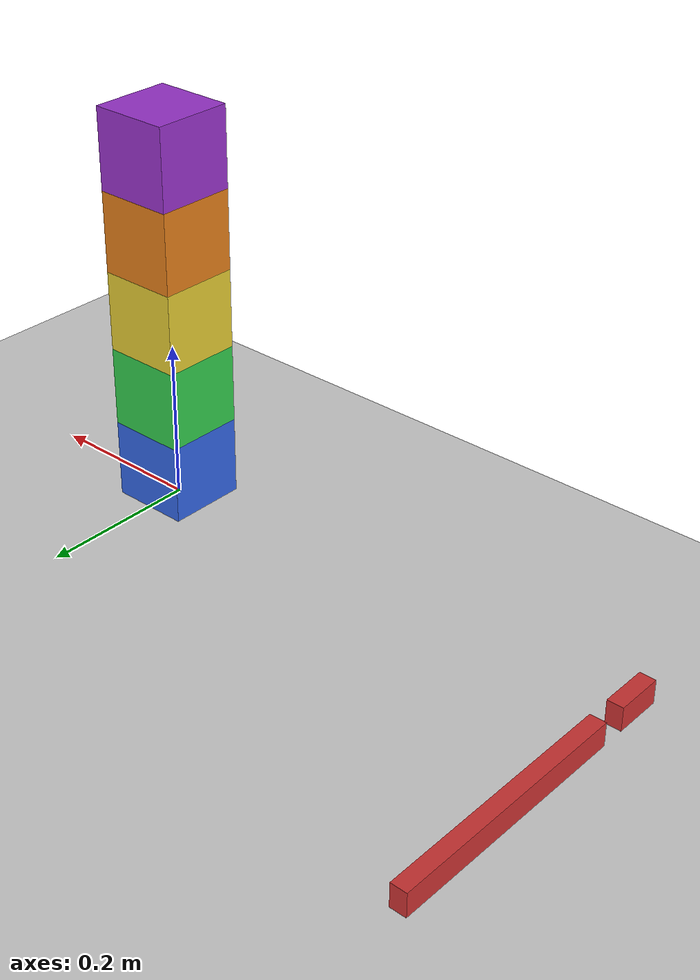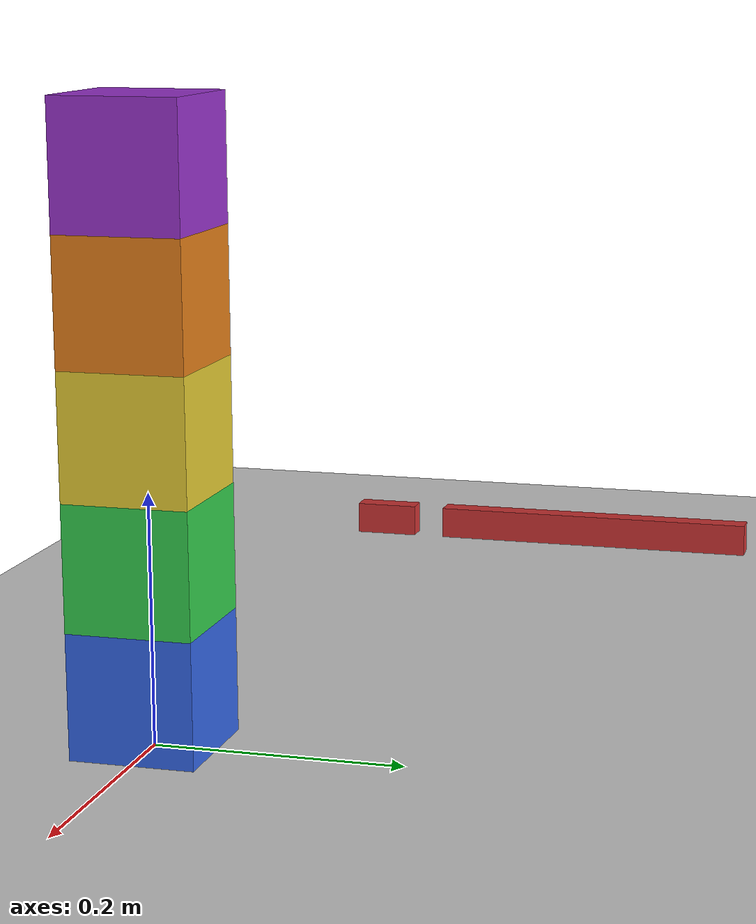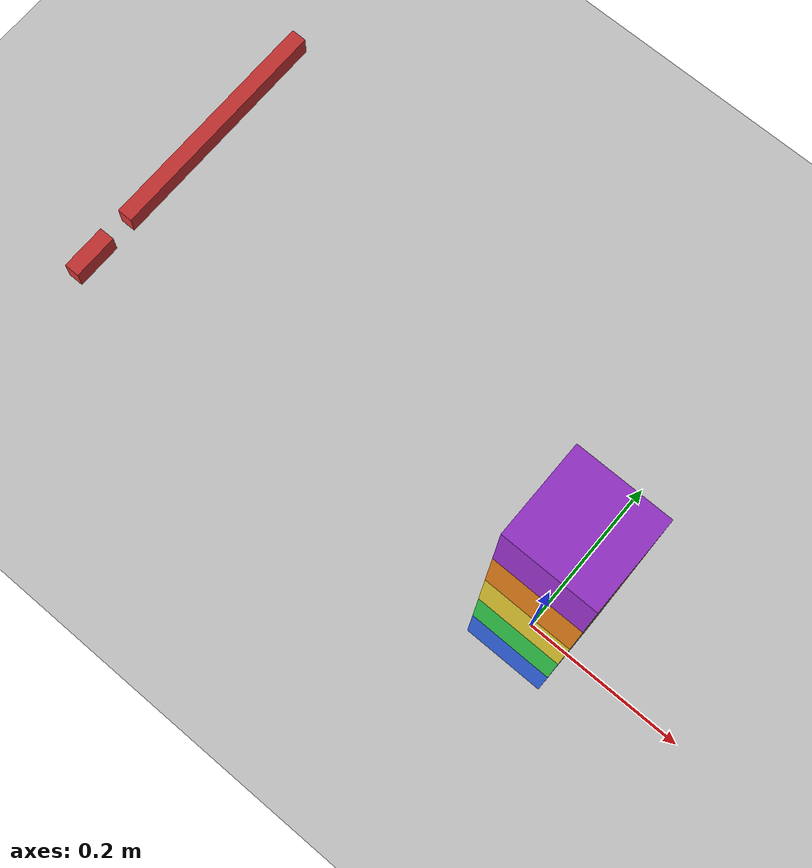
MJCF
<mujoco model="toppling_stack">
  <option timestep="0.002" gravity="0 0 -9.81"/>
  <visual>
    <global offwidth="1280" offheight="720"/>
  </visual>
  <worldbody>
    <light name="sun" pos="0 0 3" dir="0 0 -1" directional="true"/>
    <camera name="side" pos="-0.2 -1.8 0.5" xyaxes="1 0 0 0 0.3 1"/>
    <geom name="floor" type="plane" size="3 3 0.1" friction="0.8 0.005 0.0001" rgba="0.8 0.8 0.8 1"/>

    <body name="pusher" pos="-0.66 0 0.025">
      <joint name="pusher_slide" type="slide" axis="1 0 0" limited="true" range="-0.1 0.675" damping="0"/>
      <geom name="pusher_paddle" type="box" size="0.01 0.03 0.015" density="2000" rgba="0.8 0.2 0.2 1"/>
      <geom name="pusher_arm" type="box" pos="0 0.215 0" size="0.01 0.155 0.015" density="2000" rgba="0.8 0.2 0.2 1"/>
    </body>

    <body name="block1" pos="0 0 0.05">
      <freejoint name="block1_free"/>
      <geom name="block1_geom" type="box" size="0.05 0.05 0.05" density="500" friction="0.1 0.005 0.0001" rgba="0.2 0.4 0.9 1"/>
    </body>
    <body name="block2" pos="0 0 0.15">
      <freejoint name="block2_free"/>
      <geom name="block2_geom" type="box" size="0.05 0.05 0.05" density="500" friction="0.1 0.005 0.0001" rgba="0.2 0.8 0.3 1"/>
    </body>
    <body name="block3" pos="0 0 0.25">
      <freejoint name="block3_free"/>
      <geom name="block3_geom" type="box" size="0.05 0.05 0.05" density="500" friction="0.6 0.005 0.0001" rgba="0.9 0.8 0.2 1"/>
    </body>
    <body name="block4" pos="0 0 0.35">
      <freejoint name="block4_free"/>
      <geom name="block4_geom" type="box" size="0.05 0.05 0.05" density="500" friction="0.6 0.005 0.0001" rgba="0.9 0.5 0.1 1"/>
    </body>
    <body name="block5" pos="0 0 0.45">
      <freejoint name="block5_free"/>
      <geom name="block5_geom" type="box" size="0.05 0.05 0.05" density="500" friction="0.6 0.005 0.0001" rgba="0.6 0.2 0.8 1"/>
    </body>
  </worldbody>

  <actuator>
    <velocity name="pusher_motor" joint="pusher_slide" kv="300" forcelimited="true" forcerange="-200 200"/>
  </actuator>

  <keyframe>
    <key name="start" qpos="0  0 0 0.05 1 0 0 0  0 0 0.15 1 0 0 0  0 0 0.25 1 0 0 0  0 0 0.35 1 0 0 0  0 0 0.45 1 0 0 0" qvel="0.6  0 0 0 0 0 0  0 0 0 0 0 0  0 0 0 0 0 0  0 0 0 0 0 0  0 0 0 0 0 0" ctrl="0.6"/>
  </keyframe>
</mujoco>
